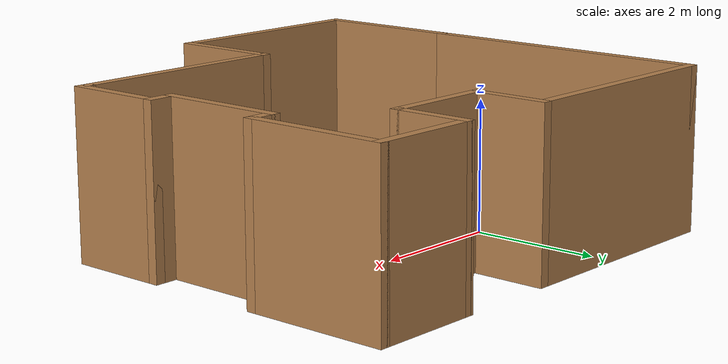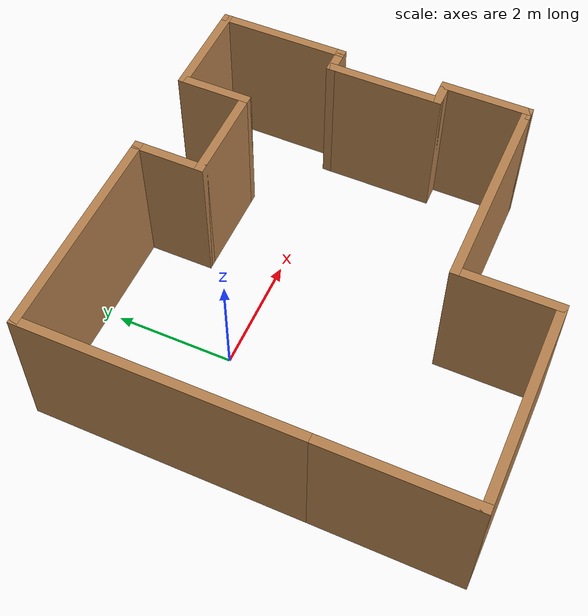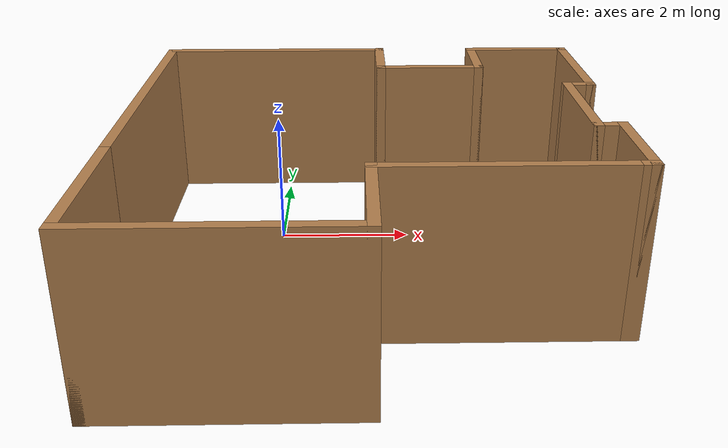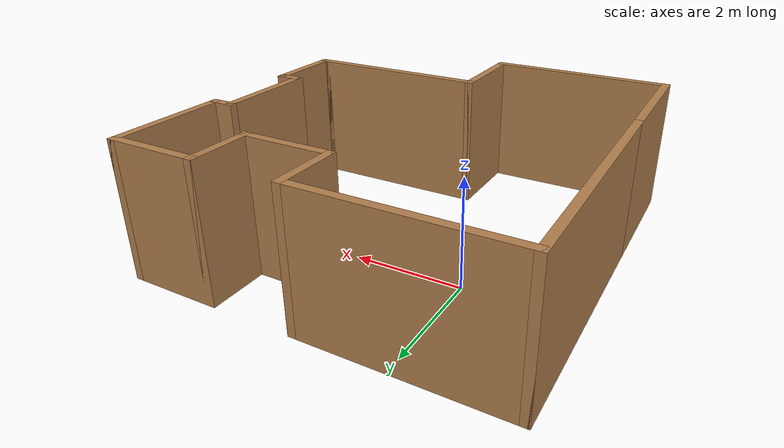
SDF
<?xml version='1.0'?>
<sdf version='1.6'>
  <model name='small_building'>
    <pose frame=''>1.41 -1.205 0 0 -0 0</pose>
    <link name='Wall_0'>
      <collision name='Wall_0_Collision'>
        <geometry>
          <box>
            <size>4.75 0.15 2.5</size>
          </box>
        </geometry>
        <pose frame=''>0 0 1.25 0 -0 0</pose>
      </collision>
      <visual name='Wall_0_Visual'>
        <pose frame=''>0 0 1.25 0 -0 0</pose>
        <geometry>
          <box>
            <size>4.75 0.15 2.5</size>
          </box>
        </geometry>
        <material>
          <script>
            <uri>file://media/materials/scripts/gazebo.material</uri>
            <name>Gazebo/Wood</name>
          </script>
          <ambient>1 1 1 1</ambient>
        </material>
        <meta>
          <layer>0</layer>
        </meta>
      </visual>
      <pose frame=''>-3.4 1.175 0 0 -0 1.5708</pose>
    </link>
    <link name='Wall_1'>
      <collision name='Wall_1_Collision'>
        <geometry>
          <box>
            <size>3.75 0.15 2.5</size>
          </box>
        </geometry>
        <pose frame=''>0 0 1.25 0 -0 0</pose>
      </collision>
      <visual name='Wall_1_Visual'>
        <pose frame=''>0 0 1.25 0 -0 0</pose>
        <geometry>
          <box>
            <size>3.75 0.15 2.5</size>
          </box>
        </geometry>
        <material>
          <script>
            <uri>file://media/materials/scripts/gazebo.material</uri>
            <name>Gazebo/Wood</name>
          </script>
          <ambient>1 1 1 1</ambient>
        </material>
        <meta>
          <layer>0</layer>
        </meta>
      </visual>
      <pose frame=''>-1.6 3.475 0 0 -0 0</pose>
    </link>
    <link name='Wall_10'>
      <collision name='Wall_10_Collision'>
        <geometry>
          <box>
            <size>0.5 0.15 2.5</size>
          </box>
        </geometry>
        <pose frame=''>0 0 1.25 0 -0 0</pose>
      </collision>
      <visual name='Wall_10_Visual'>
        <pose frame=''>0 0 1.25 0 -0 0</pose>
        <geometry>
          <box>
            <size>0.5 0.15 2.5</size>
          </box>
        </geometry>
        <material>
          <script>
            <uri>file://media/materials/scripts/gazebo.material</uri>
            <name>Gazebo/Wood</name>
          </script>
          <ambient>1 1 1 1</ambient>
        </material>
        <meta>
          <layer>0</layer>
        </meta>
      </visual>
      <pose frame=''>3.225 -0.475 0 0 -0 0</pose>
    </link>
    <link name='Wall_12'>
      <collision name='Wall_12_Collision'>
        <geometry>
          <box>
            <size>2.5 0.15 2.5</size>
          </box>
        </geometry>
        <pose frame=''>0 0 1.25 0 -0 0</pose>
      </collision>
      <visual name='Wall_12_Visual'>
        <pose frame=''>0 0 1.25 0 -0 0</pose>
        <geometry>
          <box>
            <size>2.5 0.15 2.5</size>
          </box>
        </geometry>
        <material>
          <script>
            <uri>file://media/materials/scripts/gazebo.material</uri>
            <name>Gazebo/Wood</name>
          </script>
          <ambient>1 1 1 1</ambient>
        </material>
        <meta>
          <layer>0</layer>
        </meta>
      </visual>
      <pose frame=''>-3.4 -2.3 0 0 -0 -1.5708</pose>
    </link>
    <link name='Wall_13'>
      <collision name='Wall_13_Collision'>
        <geometry>
          <box>
            <size>3.5 0.15 2.5</size>
          </box>
        </geometry>
        <pose frame=''>0 0 1.25 0 -0 0</pose>
      </collision>
      <visual name='Wall_13_Visual'>
        <pose frame=''>0 0 1.25 0 -0 0</pose>
        <geometry>
          <box>
            <size>3.5 0.15 2.5</size>
          </box>
        </geometry>
        <material>
          <script>
            <uri>file://media/materials/scripts/gazebo.material</uri>
            <name>Gazebo/Wood</name>
          </script>
          <ambient>1 1 1 1</ambient>
        </material>
        <meta>
          <layer>0</layer>
        </meta>
      </visual>
      <pose frame=''>-1.725 -3.475 0 0 -0 0</pose>
    </link>
    <link name='Wall_14'>
      <collision name='Wall_14_Collision'>
        <geometry>
          <box>
            <size>1.75 0.15 2.5</size>
          </box>
        </geometry>
        <pose frame=''>0 0 1.25 0 -0 0</pose>
      </collision>
      <visual name='Wall_14_Visual'>
        <pose frame=''>0 0 1.25 0 -0 0</pose>
        <geometry>
          <box>
            <size>1.75 0.15 2.5</size>
          </box>
        </geometry>
        <material>
          <script>
            <uri>file://media/materials/scripts/gazebo.material</uri>
            <name>Gazebo/Wood</name>
          </script>
          <ambient>1 1 1 1</ambient>
        </material>
        <meta>
          <layer>0</layer>
        </meta>
      </visual>
      <pose frame=''>-0.05 -2.675 0 0 -0 1.5708</pose>
    </link>
    <link name='Wall_15'>
      <collision name='Wall_15_Collision'>
        <geometry>
          <box>
            <size>3.5 0.15 2.5</size>
          </box>
        </geometry>
        <pose frame=''>0 0 1.25 0 -0 0</pose>
      </collision>
      <visual name='Wall_15_Visual'>
        <pose frame=''>0 0 1.25 0 -0 0</pose>
        <geometry>
          <box>
            <size>3.5 0.15 2.5</size>
          </box>
        </geometry>
        <material>
          <script>
            <uri>file://media/materials/scripts/gazebo.material</uri>
            <name>Gazebo/Wood</name>
          </script>
          <ambient>1 1 1 1</ambient>
        </material>
        <meta>
          <layer>0</layer>
        </meta>
      </visual>
      <pose frame=''>1.625 -1.875 0 0 -0 0</pose>
    </link>
    <link name='Wall_16'>
      <collision name='Wall_16_Collision'>
        <geometry>
          <box>
            <size>0.25 0.15 2.5</size>
          </box>
        </geometry>
        <pose frame=''>0 0 1.25 0 -0 0</pose>
      </collision>
      <visual name='Wall_16_Visual'>
        <pose frame=''>0 0 1.25 0 -0 0</pose>
        <geometry>
          <box>
            <size>0.25 0.15 2.5</size>
          </box>
        </geometry>
        <material>
          <script>
            <uri>file://media/materials/scripts/gazebo.material</uri>
            <name>Gazebo/Wood</name>
          </script>
          <ambient>1 1 1 1</ambient>
        </material>
        <meta>
          <layer>0</layer>
        </meta>
      </visual>
      <pose frame=''>3.35 -1.875 0 0 -0 0</pose>
    </link>
    <link name='Wall_17'>
      <collision name='Wall_17_Collision'>
        <geometry>
          <box>
            <size>1.55 0.15 2.5</size>
          </box>
        </geometry>
        <pose frame=''>0 0 1.25 0 -0 0</pose>
      </collision>
      <visual name='Wall_17_Visual'>
        <pose frame=''>0 0 1.25 0 -0 0</pose>
        <geometry>
          <box>
            <size>1.55 0.15 2.5</size>
          </box>
        </geometry>
        <material>
          <script>
            <uri>file://media/materials/scripts/gazebo.material</uri>
            <name>Gazebo/Wood</name>
          </script>
          <ambient>1 1 1 1</ambient>
        </material>
        <meta>
          <layer>0</layer>
        </meta>
      </visual>
      <pose frame=''>3.4 -1.175 0 0 -0 1.5708</pose>
    </link>
    <link name='Wall_2'>
      <collision name='Wall_2_Collision'>
        <geometry>
          <box>
            <size>1.25 0.15 2.5</size>
          </box>
        </geometry>
        <pose frame=''>0 0 1.25 0 -0 0</pose>
      </collision>
      <visual name='Wall_2_Visual'>
        <pose frame=''>0 0 1.25 0 -0 0</pose>
        <geometry>
          <box>
            <size>1.25 0.15 2.5</size>
          </box>
        </geometry>
        <material>
          <script>
            <uri>file://media/materials/scripts/gazebo.material</uri>
            <name>Gazebo/Wood</name>
          </script>
          <ambient>1 1 1 1</ambient>
        </material>
        <meta>
          <layer>0</layer>
        </meta>
      </visual>
      <pose frame=''>0.2 2.925 0 0 -0 -1.5708</pose>
    </link>
    <link name='Wall_3'>
      <collision name='Wall_3_Collision'>
        <geometry>
          <box>
            <size>1.75 0.15 2.5</size>
          </box>
        </geometry>
        <pose frame=''>0 0 1.25 0 -0 0</pose>
      </collision>
      <visual name='Wall_3_Visual'>
        <pose frame=''>0 0 1.25 0 -0 0</pose>
        <geometry>
          <box>
            <size>1.75 0.15 2.5</size>
          </box>
        </geometry>
        <material>
          <script>
            <uri>file://media/materials/scripts/gazebo.material</uri>
            <name>Gazebo/Wood</name>
          </script>
          <ambient>1 1 1 1</ambient>
        </material>
        <meta>
          <layer>0</layer>
        </meta>
      </visual>
      <pose frame=''>1 2.375 0 0 -0 0</pose>
    </link>
    <link name='Wall_4'>
      <collision name='Wall_4_Collision'>
        <geometry>
          <box>
            <size>1.25 0.15 2.5</size>
          </box>
        </geometry>
        <pose frame=''>0 0 1.25 0 -0 0</pose>
      </collision>
      <visual name='Wall_4_Visual'>
        <pose frame=''>0 0 1.25 0 -0 0</pose>
        <geometry>
          <box>
            <size>1.25 0.15 2.5</size>
          </box>
        </geometry>
        <material>
          <script>
            <uri>file://media/materials/scripts/gazebo.material</uri>
            <name>Gazebo/Wood</name>
          </script>
          <ambient>1 1 1 1</ambient>
        </material>
        <meta>
          <layer>0</layer>
        </meta>
      </visual>
      <pose frame=''>1.8 2.925 0 0 -0 1.5708</pose>
    </link>
    <link name='Wall_5'>
      <collision name='Wall_5_Collision'>
        <geometry>
          <box>
            <size>1.75 0.15 2.5</size>
          </box>
        </geometry>
        <pose frame=''>0 0 1.25 0 -0 0</pose>
      </collision>
      <visual name='Wall_5_Visual'>
        <pose frame=''>0 0 1.25 0 -0 0</pose>
        <geometry>
          <box>
            <size>1.75 0.15 2.5</size>
          </box>
        </geometry>
        <material>
          <script>
            <uri>file://media/materials/scripts/gazebo.material</uri>
            <name>Gazebo/Wood</name>
          </script>
          <ambient>1 1 1 1</ambient>
        </material>
        <meta>
          <layer>0</layer>
        </meta>
      </visual>
      <pose frame=''>2.6 3.475 0 0 -0 0</pose>
    </link>
    <link name='Wall_7'>
      <collision name='Wall_7_Collision'>
        <geometry>
          <box>
            <size>2.25 0.15 2.5</size>
          </box>
        </geometry>
        <pose frame=''>0 0 1.25 0 -0 0</pose>
      </collision>
      <visual name='Wall_7_Visual'>
        <pose frame=''>0 0 1.25 0 -0 0</pose>
        <geometry>
          <box>
            <size>2.25 0.15 2.5</size>
          </box>
        </geometry>
        <material>
          <script>
            <uri>file://media/materials/scripts/gazebo.material</uri>
            <name>Gazebo/Wood</name>
          </script>
          <ambient>1 1 1 1</ambient>
        </material>
        <meta>
          <layer>0</layer>
        </meta>
      </visual>
      <pose frame=''>3.4 2.425 0 0 -0 -1.5708</pose>
    </link>
    <link name='Wall_8'>
      <collision name='Wall_8_Collision'>
        <geometry>
          <box>
            <size>0.5 0.15 2.5</size>
          </box>
        </geometry>
        <pose frame=''>0 0 1.25 0 -0 0</pose>
      </collision>
      <visual name='Wall_8_Visual'>
        <pose frame=''>0 0 1.25 0 -0 0</pose>
        <geometry>
          <box>
            <size>0.5 0.15 2.5</size>
          </box>
        </geometry>
        <material>
          <script>
            <uri>file://media/materials/scripts/gazebo.material</uri>
            <name>Gazebo/Wood</name>
          </script>
          <ambient>1 1 1 1</ambient>
        </material>
        <meta>
          <layer>0</layer>
        </meta>
      </visual>
      <pose frame=''>3.225 1.375 0 0 -0 3.14159</pose>
    </link>
    <link name='Wall_9'>
      <collision name='Wall_9_Collision'>
        <geometry>
          <box>
            <size>2 0.15 2.5</size>
          </box>
        </geometry>
        <pose frame=''>0 0 1.25 0 -0 0</pose>
      </collision>
      <visual name='Wall_9_Visual'>
        <pose frame=''>0 0 1.25 0 -0 0</pose>
        <geometry>
          <box>
            <size>2 0.15 2.5</size>
          </box>
        </geometry>
        <material>
          <script>
            <uri>file://media/materials/scripts/gazebo.material</uri>
            <name>Gazebo/Wood</name>
          </script>
          <ambient>1 1 1 1</ambient>
        </material>
        <meta>
          <layer>0</layer>
        </meta>
      </visual>
      <pose frame=''>3.05 0.45 0 0 -0 -1.5708</pose>
    </link>
    <static>1</static>
  </model>
</sdf>
